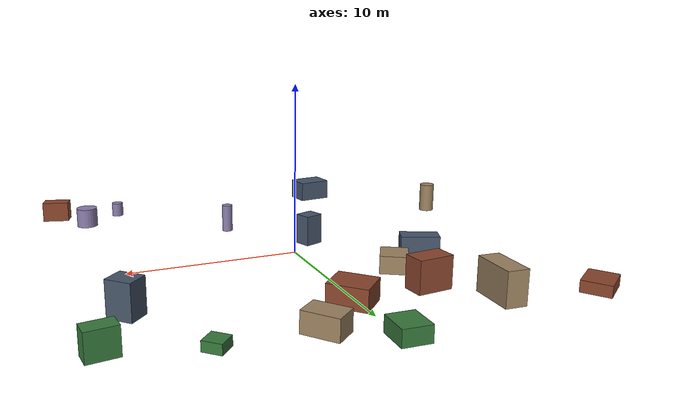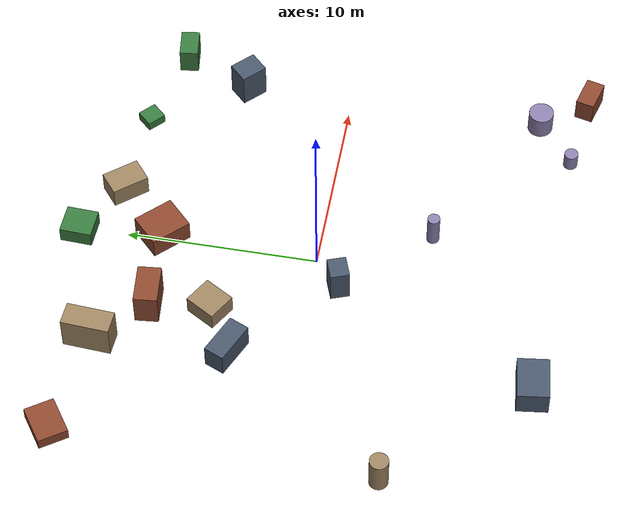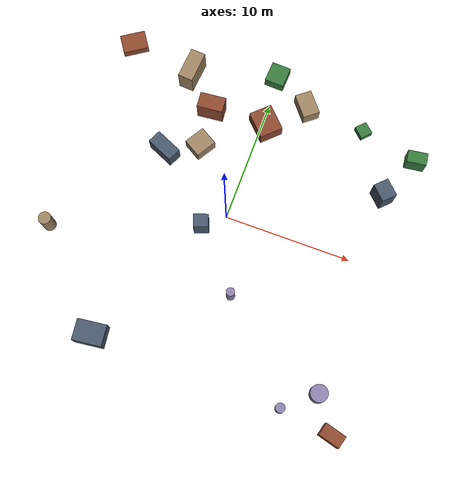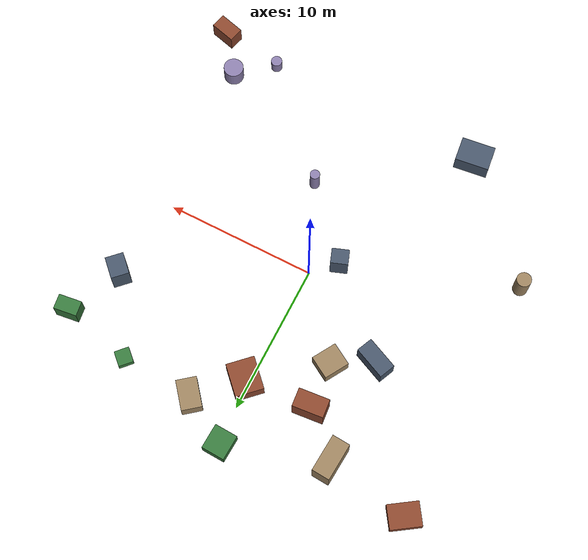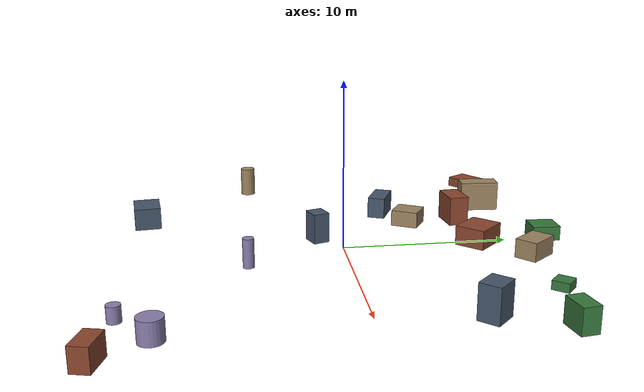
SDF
<sdf version="1.10">
 <world name="robotx_task1_uav_view">
  <gravity>0 0 -9.81</gravity>
  <physics name="physics" type="ode">
   <max_step_size>0.002</max_step_size>
   <real_time_factor>1.0</real_time_factor>
  </physics>
  <scene>
   <ambient>0.14 0.14 0.14 1.0</ambient>
   <background>0.32 0.32 0.38 1.0</background>
   <shadows>true</shadows>
   <grid>false</grid>
  </scene>
  <light name="sun" type="directional">
   <pose>0 0 300 0 0 0</pose>
   <diffuse>0.35 0.35 0.35 1.0</diffuse>
   <specular>0.12 0.12 0.12 1.0</specular>
   <direction>0.12 -0.05 -1.0</direction>
   <attenuation>
    <range>2500</range>
    <constant>0.85</constant>
    <linear>0.001</linear>
    <quadratic>0.00005</quadratic>
   </attenuation>
  </light>
  <plugin filename="gz-sim-physics-system" name="gz::sim::systems::Physics"/>
  <plugin filename="gz-sim-user-commands-system" name="gz::sim::systems::UserCommands"/>
  <plugin filename="gz-sim-scene-broadcaster-system" name="gz::sim::systems::SceneBroadcaster"/>
  <plugin filename="gz-sim-sensors-system" name="gz::sim::systems::Sensors">
   <render_engine>ogre2</render_engine>
  </plugin>
  <model name="scene_clutter_box_000">
   <static>true</static>
   <pose>2.901 10.760 0.588 0 0 0.681196</pose>
   <link name="link">
    <visual name="v">
     <geometry><box><size>1.338 1.984 1.136</size></box></geometry>
     <material><ambient>0.45 0.38 0.32 1.0</ambient><diffuse>0.62 0.52 0.38 1.0</diffuse></material>
    </visual>
   </link>
  </model>
  <model name="scene_clutter_box_001">
   <static>true</static>
   <pose>-1.505 -1.387 0.937 0 0 -1.221467</pose>
   <link name="link">
    <visual name="v">
     <geometry><box><size>0.996 1.149 1.834</size></box></geometry>
     <material><ambient>0.18 0.22 0.28 1.0</ambient><diffuse>0.28 0.34 0.42 1.0</diffuse></material>
    </visual>
   </link>
  </model>
  <model name="scene_clutter_box_002">
   <static>true</static>
   <pose>-12.321 11.341 0.346 0 0 2.165030</pose>
   <link name="link">
    <visual name="v">
     <geometry><box><size>1.575 2.044 0.652</size></box></geometry>
     <material><ambient>0.35 0.16 0.12 1.0</ambient><diffuse>0.55 0.28 0.18 1.0</diffuse></material>
    </visual>
   </link>
  </model>
  <model name="scene_clutter_box_003">
   <static>true</static>
   <pose>7.805 10.445 0.282 0 0 0.817574</pose>
   <link name="link">
    <visual name="v">
     <geometry><box><size>0.974 1.015 0.524</size></box></geometry>
     <material><ambient>0.12 0.30 0.14 1.0</ambient><diffuse>0.22 0.48 0.24 1.0</diffuse></material>
    </visual>
   </link>
  </model>
  <model name="scene_clutter_cyl_004">
   <static>true</static>
   <pose>10.957 -10.309 0.659 0 0 3.118914</pose>
   <link name="link">
    <visual name="v">
     <geometry><cylinder><radius>0.657</radius><length>1.218</length></cylinder></geometry>
     <material><ambient>0.40 0.35 0.50 1.0</ambient><diffuse>0.55 0.50 0.68 1.0</diffuse></material>
    </visual>
   </link>
  </model>
  <model name="scene_clutter_box_005">
   <static>true</static>
   <pose>-6.817 10.440 0.975 0 0 -0.067406</pose>
   <link name="link">
    <visual name="v">
     <geometry><box><size>1.203 2.504 1.910</size></box></geometry>
     <material><ambient>0.45 0.38 0.32 1.0</ambient><diffuse>0.62 0.52 0.38 1.0</diffuse></material>
    </visual>
   </link>
  </model>
  <model name="scene_clutter_box_006">
   <static>true</static>
   <pose>-6.452 3.441 0.692 0 0 2.725459</pose>
   <link name="link">
    <visual name="v">
     <geometry><box><size>2.247 1.102 1.343</size></box></geometry>
     <material><ambient>0.18 0.22 0.28 1.0</ambient><diffuse>0.28 0.34 0.42 1.0</diffuse></material>
    </visual>
   </link>
  </model>
  <model name="scene_clutter_box_007">
   <static>true</static>
   <pose>0.300 8.213 0.612 0 0 -0.798462</pose>
   <link name="link">
    <visual name="v">
     <geometry><box><size>2.188 1.863 1.184</size></box></geometry>
     <material><ambient>0.35 0.16 0.12 1.0</ambient><diffuse>0.55 0.28 0.18 1.0</diffuse></material>
    </visual>
   </link>
  </model>
  <model name="scene_clutter_box_008">
   <static>true</static>
   <pose>12.416 9.286 0.733 0 0 0.131309</pose>
   <link name="link">
    <visual name="v">
     <geometry><box><size>1.542 0.984 1.425</size></box></geometry>
     <material><ambient>0.12 0.30 0.14 1.0</ambient><diffuse>0.22 0.48 0.24 1.0</diffuse></material>
    </visual>
   </link>
  </model>
  <model name="scene_clutter_cyl_009">
   <static>true</static>
   <pose>8.685 -12.211 0.495 0 0 0.879991</pose>
   <link name="link">
    <visual name="v">
     <geometry><cylinder><radius>0.366</radius><length>0.891</length></cylinder></geometry>
     <material><ambient>0.40 0.35 0.50 1.0</ambient><diffuse>0.55 0.50 0.68 1.0</diffuse></material>
    </visual>
   </link>
  </model>
  <model name="scene_clutter_cyl_010">
   <static>true</static>
   <pose>-12.582 -5.300 0.997 0 0 -1.134751</pose>
   <link name="link">
    <visual name="v">
     <geometry><cylinder><radius>0.485</radius><length>1.893</length></cylinder></geometry>
     <material><ambient>0.45 0.38 0.32 1.0</ambient><diffuse>0.62 0.52 0.38 1.0</diffuse></material>
    </visual>
   </link>
  </model>
  <model name="scene_clutter_box_011">
   <static>true</static>
   <pose>10.803 5.678 0.992 0 0 0.788369</pose>
   <link name="link">
    <visual name="v">
     <geometry><box><size>1.199 1.438 1.945</size></box></geometry>
     <material><ambient>0.18 0.22 0.28 1.0</ambient><diffuse>0.28 0.34 0.42 1.0</diffuse></material>
    </visual>
   </link>
  </model>
  <model name="scene_clutter_box_012">
   <static>true</static>
   <pose>-4.193 7.959 0.938 0 0 -3.046944</pose>
   <link name="link">
    <visual name="v">
     <geometry><box><size>2.059 1.225 1.835</size></box></geometry>
     <material><ambient>0.35 0.16 0.12 1.0</ambient><diffuse>0.55 0.28 0.18 1.0</diffuse></material>
    </visual>
   </link>
  </model>
  <model name="scene_clutter_box_013">
   <static>true</static>
   <pose>-0.202 12.538 0.458 0 0 -0.046747</pose>
   <link name="link">
    <visual name="v">
     <geometry><box><size>1.549 1.673 0.877</size></box></geometry>
     <material><ambient>0.12 0.30 0.14 1.0</ambient><diffuse>0.22 0.48 0.24 1.0</diffuse></material>
    </visual>
   </link>
  </model>
  <model name="scene_clutter_cyl_014">
   <static>true</static>
   <pose>2.487 -5.717 0.905 0 0 -0.471924</pose>
   <link name="link">
    <visual name="v">
     <geometry><cylinder><radius>0.325</radius><length>1.709</length></cylinder></geometry>
     <material><ambient>0.40 0.35 0.50 1.0</ambient><diffuse>0.55 0.50 0.68 1.0</diffuse></material>
    </visual>
   </link>
  </model>
  <model name="scene_clutter_box_015">
   <static>true</static>
   <pose>-3.969 4.821 0.527 0 0 -0.534619</pose>
   <link name="link">
    <visual name="v">
     <geometry><box><size>1.553 1.709 1.013</size></box></geometry>
     <material><ambient>0.45 0.38 0.32 1.0</ambient><diffuse>0.62 0.52 0.38 1.0</diffuse></material>
    </visual>
   </link>
  </model>
  <model name="scene_clutter_box_016">
   <static>true</static>
   <pose>-6.148 -12.003 0.702 0 0 -3.017300</pose>
   <link name="link">
    <visual name="v">
     <geometry><box><size>2.252 1.625 1.363</size></box></geometry>
     <material><ambient>0.18 0.22 0.28 1.0</ambient><diffuse>0.28 0.34 0.42 1.0</diffuse></material>
    </visual>
   </link>
  </model>
  <model name="scene_clutter_box_017">
   <static>true</static>
   <pose>12.749 -12.748 0.659 0 0 2.885313</pose>
   <link name="link">
    <visual name="v">
     <geometry><box><size>1.671 0.978 1.277</size></box></geometry>
     <material><ambient>0.35 0.16 0.12 1.0</ambient><diffuse>0.55 0.28 0.18 1.0</diffuse></material>
    </visual>
   </link>
  </model>
  <model name="uav_dataset_camera">
   <static>false</static>
   <pose>0 0 26 0 0 0</pose>
   <plugin filename="librobotx_overhead_motion_plugin.dylib" name="robotx::OverheadMotionPlugin">
    <radius_x_m>9.40070</radius_x_m>
    <radius_y_m>10.38202</radius_y_m>
    <angular_speed_rad_s>0.083128</angular_speed_rad_s>
    <phase_rad>1.237846</phase_rad>
    <z_wobble_m>0.06313</z_wobble_m>
    <z_wobble_hz>0.05866</z_wobble_hz>
    <z_wobble_phase_rad>2.622636</z_wobble_phase_rad>
   </plugin>
   <link name="camera_link">
    <gravity>false</gravity>
    <sensor name="top_down_rgb" type="camera">
     <always_on>true</always_on>
     <update_rate>20</update_rate>
     <pose>0 0 0 0 1.57079632679 0</pose>
     <camera>
      <horizontal_fov>1.05</horizontal_fov>
      <image><width>1920</width><height>1080</height><format>R8G8B8</format></image>
      <clip><near>0.2</near><far>600</far></clip>
     </camera>
     <topic>/robotx/uav/camera/image_raw</topic>
     <visualize>true</visualize>
    </sensor>
   </link>
  </model>
 </world>
</sdf>
